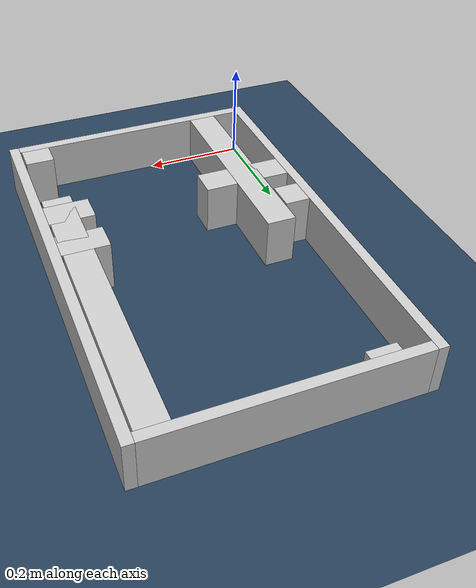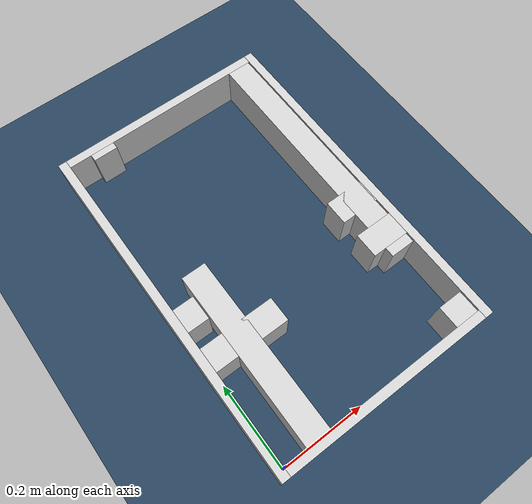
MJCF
<?xml version="1.0" ?>
<mujoco model="generated_real_template">
  <compiler angle="degree"/>
  <option timestep="0.002" integrator="implicitfast" iterations="100" cone="elliptic"/>
  <default>
    <geom density="1"/>
  </default>
  <asset>
    <texture builtin="gradient" height="3072" rgb1="0.3 0.5 0.7" rgb2="0 0 0" type="skybox" width="512"/>
    <texture builtin="checker" height="300" mark="edge" markrgb="0.8 0.8 0.8" name="groundplane" rgb1="0.2 0.3 0.4" rgb2="0.1 0.2 0.3" type="2d" width="300"/>
    <material name="groundplane" reflectance="0.2" texrepeat="5 5" texture="groundplane" texuniform="true"/>
  </asset>
  <worldbody>
    <light dir="0 0 -1" directional="true" pos="0 0 1.5"/>
    <geom name="floor" type="plane" condim="4" friction="0.5 0.005 0.001" material="groundplane" size="0 0 0.05"/>
    <body name="walls">
      <geom name="wall_boundary_left" type="box" condim="4" friction="1.0 0.005 0.0001" rgba="0.8 0.8 0.8 1" pos="-0.010000 0.387500 0.050000" euler="0 0 0.000000" size="0.010000 0.407500 0.050000"/>
      <geom name="wall_boundary_right" type="box" condim="4" friction="1.0 0.005 0.0001" rgba="0.8 0.8 0.8 1" pos="0.500000 0.387500 0.050000" euler="0 0 0.000000" size="0.010000 0.407500 0.050000"/>
      <geom name="wall_boundary_bottom" type="box" condim="4" friction="1.0 0.005 0.0001" rgba="0.8 0.8 0.8 1" pos="0.245000 -0.010000 0.050000" euler="0 0 0.000000" size="0.245000 0.010000 0.050000"/>
      <geom name="wall_boundary_top" type="box" condim="4" friction="1.0 0.005 0.0001" rgba="0.8 0.8 0.8 1" pos="0.245000 0.785000 0.050000" euler="0 0 0.000000" size="0.245000 0.010000 0.050000"/>
      <geom name="wall_inner_1_1" type="box" condim="4" friction="1.0 0.005 0.0001" rgba="0.8 0.8 0.8 1" pos="0.024835 0.336959 0.050000" euler="0 0 0.000000" size="0.024835 0.028500 0.050000"/>
      <geom name="wall_inner_1_2" type="box" condim="4" friction="1.0 0.005 0.0001" rgba="0.8 0.8 0.8 1" pos="0.444264 0.336959 0.050000" euler="0 0 0.000000" size="0.045736 0.028500 0.050000"/>
      <geom name="wall_inner_2_1" type="box" condim="4" friction="1.0 0.005 0.0001" rgba="0.8 0.8 0.8 1" pos="0.086863 0.240373 0.050000" euler="0 0 0.000000" size="0.086863 0.028500 0.050000"/>
      <geom name="wall_inner_2_2" type="box" condim="4" friction="1.0 0.005 0.0001" rgba="0.8 0.8 0.8 1" pos="0.445373 0.240373 0.050000" euler="0 0 0.000000" size="0.044627 0.028500 0.050000"/>
      <geom name="wall_inner_3_1" type="box" condim="4" friction="1.0 0.005 0.0001" rgba="0.8 0.8 0.8 1" pos="0.081005 0.205403 0.050000" euler="0 0 90.000000" size="0.205403 0.028500 0.050000"/>
      <geom name="wall_inner_3_2" type="box" condim="4" friction="1.0 0.005 0.0001" rgba="0.8 0.8 0.8 1" pos="0.081005 0.766743 0.050000" euler="0 0 90.000000" size="0.008257 0.028500 0.050000"/>
      <geom name="wall_inner_4_1" type="box" condim="4" friction="1.0 0.005 0.0001" rgba="0.8 0.8 0.8 1" pos="0.458619 0.025224 0.050000" euler="0 0 90.000000" size="0.025224 0.028500 0.050000"/>
      <geom name="wall_inner_4_2" type="box" condim="4" friction="1.0 0.005 0.0001" rgba="0.8 0.8 0.8 1" pos="0.458619 0.482142 0.050000" euler="0 0 90.000000" size="0.292858 0.028500 0.050000"/>
    </body>
  </worldbody>
</mujoco>
